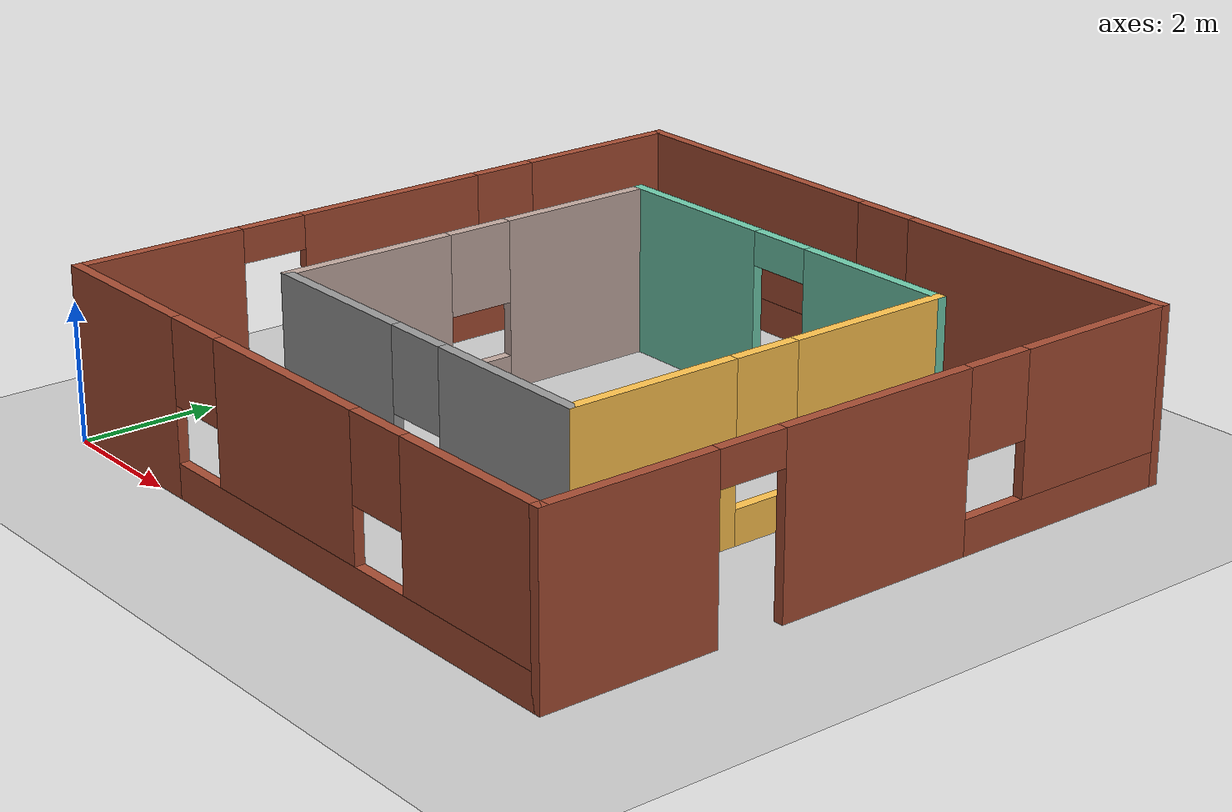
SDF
<sdf version="1.6">
 <world name="default">
  <plugin name="project_gazebo" filename="libproject_gazebo.so"/>
  <light name="sun" type="directional">
   <pose>0 0 10 0 -0 0</pose>
   <diffuse>0.8 0.8 0.8 1</diffuse>
   <specular>0.2 0.2 0.2 1</specular>
   <attenuation>
    <range>1000</range>
    <constant>0.9</constant>
    <linear>0.01</linear>
    <quadratic>0.001</quadratic>
   </attenuation>
   <direction>-0.5 0.1 -0.9</direction>
  </light>
  <model name="ground_plane">
   <static>1</static>
   <link name="link">
    <collision name="collision">
     <geometry><plane><normal>0 0 1</normal><size>100 100</size></plane></geometry>
     <surface>
      <contact><collide_bitmask>65535</collide_bitmask></contact>
      <friction><ode><mu>100</mu><mu2>50</mu2></ode></friction>
     </surface>
    </collision>
    <visual name="visual">
     <cast_shadows>0</cast_shadows>
     <geometry><plane><normal>0 0 1</normal><size>100 100</size></plane></geometry>
     <material>
      <script><uri>file://media/materials/scripts/gazebo.material</uri><name>Gazebo/Grey</name></script>
     </material>
    </visual>
   </link>
  </model>
  <gravity>0 0 -9.8</gravity>
  <magnetic_field>6e-06 2.3e-05 -4.2e-05</magnetic_field>
  <atmosphere type="adiabatic"/>
  <physics name="default_physics" default="0" type="ode">
   <max_step_size>0.001</max_step_size>
   <real_time_factor>1</real_time_factor>
   <real_time_update_rate>1000</real_time_update_rate>
  </physics>
  <scene><ambient>0.4 0.4 0.4 1</ambient><background>0.7 0.7 0.7 1</background><shadows>1</shadows></scene>
  <audio><device>default</device></audio>
  <spherical_coordinates>
   <surface_model>EARTH_WGS84</surface_model>
   <latitude_deg>0</latitude_deg>
   <longitude_deg>0</longitude_deg>
   <elevation>0</elevation>
   <heading_deg>0</heading_deg>
  </spherical_coordinates>
  <model name="project_gazebo_wall">
   <pose>4.98744 5.10563 0 0 -0 0</pose>
   <link name="Wall_1">
    <pose>5 -0 0 0 -0 1.5708</pose>
    <visual name="Wall_1_Visual_0">
     <pose>-3.7875 0 1.25 0 -0 0</pose>
     <geometry><box><size>2.575 0.15 2.5</size></box></geometry>
     <material>
      <script><uri>file://media/materials/scripts/gazebo.material</uri><name>Gazebo/Bricks</name></script>
      <ambient>1 1 1 1</ambient>
     </material>
     <meta><layer>0</layer></meta>
    </visual>
    <collision name="Wall_1_Collision_0">
     <geometry><box><size>2.575 0.15 2.5</size></box></geometry>
     <pose>-3.7875 0 1.25 0 -0 0</pose>
    </collision>
    <visual name="Wall_1_Visual_1">
     <pose>0 0 1.25 0 -0 0</pose>
     <geometry><box><size>3 0.15 2.5</size></box></geometry>
     <material>
      <script><uri>file://media/materials/scripts/gazebo.material</uri><name>Gazebo/Bricks</name></script>
      <ambient>1 1 1 1</ambient>
     </material>
     <meta><layer>0</layer></meta>
    </visual>
    <collision name="Wall_1_Collision_1">
     <geometry><box><size>3 0.15 2.5</size></box></geometry>
     <pose>0 0 1.25 0 -0 0</pose>
    </collision>
    <visual name="Wall_1_Visual_2">
     <pose>3.2875 0 0.25 0 -0 0</pose>
     <geometry><box><size>3.575 0.15 0.5</size></box></geometry>
     <material>
      <script><uri>file://media/materials/scripts/gazebo.material</uri><name>Gazebo/Bricks</name></script>
      <ambient>1 1 1 1</ambient>
     </material>
     <meta><layer>0</layer></meta>
    </visual>
    <collision name="Wall_1_Collision_2">
     <geometry><box><size>3.575 0.15 0.5</size></box></geometry>
     <pose>3.2875 0 0.25 0 -0 0</pose>
    </collision>
    <visual name="Wall_1_Visual_3">
     <pose>3.7875 0 1.5 0 -0 0</pose>
     <geometry><box><size>2.575 0.15 2</size></box></geometry>
     <material>
      <script><uri>file://media/materials/scripts/gazebo.material</uri><name>Gazebo/Bricks</name></script>
      <ambient>1 1 1 1</ambient>
     </material>
     <meta><layer>0</layer></meta>
    </visual>
    <collision name="Wall_1_Collision_3">
     <geometry><box><size>2.575 0.15 2</size></box></geometry>
     <pose>3.7875 0 1.5 0 -0 0</pose>
    </collision>
    <visual name="Wall_1_Visual_4">
     <pose>2 0 1.9 0 -0 0</pose>
     <geometry><box><size>1 0.15 1.2</size></box></geometry>
     <material>
      <script><uri>file://media/materials/scripts/gazebo.material</uri><name>Gazebo/Bricks</name></script>
      <ambient>1 1 1 1</ambient>
     </material>
     <meta><layer>0</layer></meta>
    </visual>
    <collision name="Wall_1_Collision_4">
     <geometry><box><size>1 0.15 1.2</size></box></geometry>
     <pose>2 0 1.9 0 -0 0</pose>
    </collision>
    <visual name="Wall_1_Visual_5">
     <pose>-2 0 2.25 0 -0 0</pose>
     <geometry><box><size>1 0.15 0.5</size></box></geometry>
     <material>
      <script><uri>file://media/materials/scripts/gazebo.material</uri><name>Gazebo/Bricks</name></script>
      <ambient>1 1 1 1</ambient>
     </material>
     <meta><layer>0</layer></meta>
    </visual>
    <collision name="Wall_1_Collision_5">
     <geometry><box><size>1 0.15 0.5</size></box></geometry>
     <pose>-2 0 2.25 0 -0 0</pose>
    </collision>
   </link>
   <link name="Wall_10">
    <pose>-0 -3 0 0 -0 0</pose>
    <visual name="Wall_10_Visual_0">
     <pose>-1.80742 0 1.25 0 -0 0</pose>
     <geometry><box><size>2.53517 0.15 2.5</size></box></geometry>
     <material>
      <script><uri>file://media/materials/scripts/gazebo.material</uri><name>Gazebo/Grey</name></script>
      <ambient>1 1 1 1</ambient>
     </material>
     <meta><layer>0</layer></meta>
    </visual>
    <collision name="Wall_10_Collision_0">
     <geometry><box><size>2.53517 0.15 2.5</size></box></geometry>
     <pose>-1.80742 0 1.25 0 -0 0</pose>
    </collision>
    <visual name="Wall_10_Visual_1">
     <pose>1.26758 0 0.25 0 -0 0</pose>
     <geometry><box><size>3.61483 0.15 0.5</size></box></geometry>
     <material>
      <script><uri>file://media/materials/scripts/gazebo.material</uri><name>Gazebo/Grey</name></script>
      <ambient>1 1 1 1</ambient>
     </material>
     <meta><layer>0</layer></meta>
    </visual>
    <collision name="Wall_10_Collision_1">
     <geometry><box><size>3.61483 0.15 0.5</size></box></geometry>
     <pose>1.26758 0 0.25 0 -0 0</pose>
    </collision>
    <visual name="Wall_10_Visual_2">
     <pose>1.76758 0 1.5 0 -0 0</pose>
     <geometry><box><size>2.61483 0.15 2</size></box></geometry>
     <material>
      <script><uri>file://media/materials/scripts/gazebo.material</uri><name>Gazebo/Grey</name></script>
      <ambient>1 1 1 1</ambient>
     </material>
     <meta><layer>0</layer></meta>
    </visual>
    <collision name="Wall_10_Collision_2">
     <geometry><box><size>2.61483 0.15 2</size></box></geometry>
     <pose>1.76758 0 1.5 0 -0 0</pose>
    </collision>
    <visual name="Wall_10_Visual_3">
     <pose>-0.039832 0 1.9 0 -0 0</pose>
     <geometry><box><size>1 0.15 1.2</size></box></geometry>
     <material>
      <script><uri>file://media/materials/scripts/gazebo.material</uri><name>Gazebo/Grey</name></script>
      <ambient>1 1 1 1</ambient>
     </material>
     <meta><layer>0</layer></meta>
    </visual>
    <collision name="Wall_10_Collision_3">
     <geometry><box><size>1 0.15 1.2</size></box></geometry>
     <pose>-0.039832 0 1.9 0 -0 0</pose>
    </collision>
   </link>
   <link name="Wall_11">
    <pose>3 -0 0 0 -0 1.5708</pose>
    <visual name="Wall_11_Visual_0">
     <pose>-1.78192 0 1.25 0 -0 0</pose>
     <geometry><box><size>2.58615 0.15 2.5</size></box></geometry>
     <material>
      <script><uri>file://media/materials/scripts/gazebo.material</uri><name>Gazebo/Grey</name></script>
      <ambient>1 0.764706 0.305882 1</ambient>
     </material>
     <meta><layer>0</layer></meta>
    </visual>
    <collision name="Wall_11_Collision_0">
     <geometry><box><size>2.58615 0.15 2.5</size></box></geometry>
     <pose>-1.78192 0 1.25 0 -0 0</pose>
    </collision>
    <visual name="Wall_11_Visual_1">
     <pose>1.29308 0 0.25 0 -0 0</pose>
     <geometry><box><size>3.56385 0.15 0.5</size></box></geometry>
     <material>
      <script><uri>file://media/materials/scripts/gazebo.material</uri><name>Gazebo/Grey</name></script>
      <ambient>1 0.764706 0.305882 1</ambient>
     </material>
     <meta><layer>0</layer></meta>
    </visual>
    <collision name="Wall_11_Collision_1">
     <geometry><box><size>3.56385 0.15 0.5</size></box></geometry>
     <pose>1.29308 0 0.25 0 -0 0</pose>
    </collision>
    <visual name="Wall_11_Visual_2">
     <pose>1.79308 0 1.5 0 -0 0</pose>
     <geometry><box><size>2.56385 0.15 2</size></box></geometry>
     <material>
      <script><uri>file://media/materials/scripts/gazebo.material</uri><name>Gazebo/Grey</name></script>
      <ambient>1 0.764706 0.305882 1</ambient>
     </material>
     <meta><layer>0</layer></meta>
    </visual>
    <collision name="Wall_11_Collision_2">
     <geometry><box><size>2.56385 0.15 2</size></box></geometry>
     <pose>1.79308 0 1.5 0 -0 0</pose>
    </collision>
    <visual name="Wall_11_Visual_3">
     <pose>0.011152 0 1.9 0 -0 0</pose>
     <geometry><box><size>1 0.15 1.2</size></box></geometry>
     <material>
      <script><uri>file://media/materials/scripts/gazebo.material</uri><name>Gazebo/Grey</name></script>
      <ambient>1 0.764706 0.305882 1</ambient>
     </material>
     <meta><layer>0</layer></meta>
    </visual>
    <collision name="Wall_11_Collision_3">
     <geometry><box><size>1 0.15 1.2</size></box></geometry>
     <pose>0.011152 0 1.9 0 -0 0</pose>
    </collision>
   </link>
   <link name="Wall_12">
    <pose>-0 3 0 0 -0 3.14159</pose>
    <visual name="Wall_12_Visual_0">
     <pose>-1.80804 0 1.25 0 -0 0</pose>
     <geometry><box><size>2.53392 0.15 2.5</size></box></geometry>
     <material>
      <script><uri>file://media/materials/scripts/gazebo.material</uri><name>Gazebo/Grey</name></script>
      <ambient>0.435294 0.796078 0.67451 1</ambient>
     </material>
     <meta><layer>0</layer></meta>
    </visual>
    <collision name="Wall_12_Collision_0">
     <geometry><box><size>2.53392 0.15 2.5</size></box></geometry>
     <pose>-1.80804 0 1.25 0 -0 0</pose>
    </collision>
    <visual name="Wall_12_Visual_1">
     <pose>1.76696 0 1.25 0 -0 0</pose>
     <geometry><box><size>2.61608 0.15 2.5</size></box></geometry>
     <material>
      <script><uri>file://media/materials/scripts/gazebo.material</uri><name>Gazebo/Grey</name></script>
      <ambient>0.435294 0.796078 0.67451 1</ambient>
     </material>
     <meta><layer>0</layer></meta>
    </visual>
    <collision name="Wall_12_Collision_1">
     <geometry><box><size>2.61608 0.15 2.5</size></box></geometry>
     <pose>1.76696 0 1.25 0 -0 0</pose>
    </collision>
    <visual name="Wall_12_Visual_2">
     <pose>-0.041079 0 2.25 0 -0 0</pose>
     <geometry><box><size>1 0.15 0.5</size></box></geometry>
     <material>
      <script><uri>file://media/materials/scripts/gazebo.material</uri><name>Gazebo/Grey</name></script>
      <ambient>0.435294 0.796078 0.67451 1</ambient>
     </material>
     <meta><layer>0</layer></meta>
    </visual>
    <collision name="Wall_12_Collision_2">
     <geometry><box><size>1 0.15 0.5</size></box></geometry>
     <pose>-0.041079 0 2.25 0 -0 0</pose>
    </collision>
   </link>
   <link name="Wall_2">
    <pose>-0 5 0 0 -0 3.14159</pose>
    <visual name="Wall_2_Visual_0">
     <pose>-2.7875 0 1.25 0 -0 0</pose>
     <geometry><box><size>4.575 0.15 2.5</size></box></geometry>
     <material>
      <script><uri>file://media/materials/scripts/gazebo.material</uri><name>Gazebo/Bricks</name></script>
      <ambient>1 1 1 1</ambient>
     </material>
     <meta><layer>0</layer></meta>
    </visual>
    <collision name="Wall_2_Collision_0">
     <geometry><box><size>4.575 0.15 2.5</size></box></geometry>
     <pose>-2.7875 0 1.25 0 -0 0</pose>
    </collision>
    <visual name="Wall_2_Visual_1">
     <pose>2.2875 0 0.25 0 -0 0</pose>
     <geometry><box><size>5.575 0.15 0.5</size></box></geometry>
     <material>
      <script><uri>file://media/materials/scripts/gazebo.material</uri><name>Gazebo/Bricks</name></script>
      <ambient>1 1 1 1</ambient>
     </material>
     <meta><layer>0</layer></meta>
    </visual>
    <collision name="Wall_2_Collision_1">
     <geometry><box><size>5.575 0.15 0.5</size></box></geometry>
     <pose>2.2875 0 0.25 0 -0 0</pose>
    </collision>
    <visual name="Wall_2_Visual_2">
     <pose>2.7875 0 1.5 0 -0 0</pose>
     <geometry><box><size>4.575 0.15 2</size></box></geometry>
     <material>
      <script><uri>file://media/materials/scripts/gazebo.material</uri><name>Gazebo/Bricks</name></script>
      <ambient>1 1 1 1</ambient>
     </material>
     <meta><layer>0</layer></meta>
    </visual>
    <collision name="Wall_2_Collision_2">
     <geometry><box><size>4.575 0.15 2</size></box></geometry>
     <pose>2.7875 0 1.5 0 -0 0</pose>
    </collision>
    <visual name="Wall_2_Visual_3">
     <pose>0 0 1.9 0 -0 0</pose>
     <geometry><box><size>1 0.15 1.2</size></box></geometry>
     <material>
      <script><uri>file://media/materials/scripts/gazebo.material</uri><name>Gazebo/Bricks</name></script>
      <ambient>1 1 1 1</ambient>
     </material>
     <meta><layer>0</layer></meta>
    </visual>
    <collision name="Wall_2_Collision_3">
     <geometry><box><size>1 0.15 1.2</size></box></geometry>
     <pose>0 0 1.9 0 -0 0</pose>
    </collision>
   </link>
   <link name="Wall_6">
    <pose>-5 -0 0 0 -0 -1.5708</pose>
    <visual name="Wall_6_Visual_0">
     <pose>-3.7875 0 1.25 0 -0 0</pose>
     <geometry><box><size>2.575 0.15 2.5</size></box></geometry>
     <material>
      <script><uri>file://media/materials/scripts/gazebo.material</uri><name>Gazebo/Bricks</name></script>
      <ambient>1 1 1 1</ambient>
     </material>
     <meta><layer>0</layer></meta>
    </visual>
    <collision name="Wall_6_Collision_0">
     <geometry><box><size>2.575 0.15 2.5</size></box></geometry>
     <pose>-3.7875 0 1.25 0 -0 0</pose>
    </collision>
    <visual name="Wall_6_Visual_1">
     <pose>3.7875 0 1.25 0 -0 0</pose>
     <geometry><box><size>2.575 0.15 2.5</size></box></geometry>
     <material>
      <script><uri>file://media/materials/scripts/gazebo.material</uri><name>Gazebo/Bricks</name></script>
      <ambient>1 1 1 1</ambient>
     </material>
     <meta><layer>0</layer></meta>
    </visual>
    <collision name="Wall_6_Collision_1">
     <geometry><box><size>2.575 0.15 2.5</size></box></geometry>
     <pose>3.7875 0 1.25 0 -0 0</pose>
    </collision>
    <visual name="Wall_6_Visual_2">
     <pose>-0.5 0 0.25 0 -0 0</pose>
     <geometry><box><size>4 0.15 0.5</size></box></geometry>
     <material>
      <script><uri>file://media/materials/scripts/gazebo.material</uri><name>Gazebo/Bricks</name></script>
      <ambient>1 1 1 1</ambient>
     </material>
     <meta><layer>0</layer></meta>
    </visual>
    <collision name="Wall_6_Collision_2">
     <geometry><box><size>4 0.15 0.5</size></box></geometry>
     <pose>-0.5 0 0.25 0 -0 0</pose>
    </collision>
    <visual name="Wall_6_Visual_3">
     <pose>0 0 1.5 0 -0 0</pose>
     <geometry><box><size>3 0.15 2</size></box></geometry>
     <material>
      <script><uri>file://media/materials/scripts/gazebo.material</uri><name>Gazebo/Bricks</name></script>
      <ambient>1 1 1 1</ambient>
     </material>
     <meta><layer>0</layer></meta>
    </visual>
    <collision name="Wall_6_Collision_3">
     <geometry><box><size>3 0.15 2</size></box></geometry>
     <pose>0 0 1.5 0 -0 0</pose>
    </collision>
    <visual name="Wall_6_Visual_4">
     <pose>-2 0 1.9 0 -0 0</pose>
     <geometry><box><size>1 0.15 1.2</size></box></geometry>
     <material>
      <script><uri>file://media/materials/scripts/gazebo.material</uri><name>Gazebo/Bricks</name></script>
      <ambient>1 1 1 1</ambient>
     </material>
     <meta><layer>0</layer></meta>
    </visual>
    <collision name="Wall_6_Collision_4">
     <geometry><box><size>1 0.15 1.2</size></box></geometry>
     <pose>-2 0 1.9 0 -0 0</pose>
    </collision>
    <visual name="Wall_6_Visual_5">
     <pose>2 0 2.25 0 -0 0</pose>
     <geometry><box><size>1 0.15 0.5</size></box></geometry>
     <material>
      <script><uri>file://media/materials/scripts/gazebo.material</uri><name>Gazebo/Bricks</name></script>
      <ambient>1 1 1 1</ambient>
     </material>
     <meta><layer>0</layer></meta>
    </visual>
    <collision name="Wall_6_Collision_5">
     <geometry><box><size>1 0.15 0.5</size></box></geometry>
     <pose>2 0 2.25 0 -0 0</pose>
    </collision>
   </link>
   <link name="Wall_7">
    <pose>-0 -5 0 0 -0 0</pose>
    <visual name="Wall_7_Visual_0">
     <pose>-3.7875 0 1.25 0 -0 0</pose>
     <geometry><box><size>2.575 0.15 2.5</size></box></geometry>
     <material>
      <script><uri>file://media/materials/scripts/gazebo.material</uri><name>Gazebo/Bricks</name></script>
      <ambient>1 1 1 1</ambient>
     </material>
     <meta><layer>0</layer></meta>
    </visual>
    <collision name="Wall_7_Collision_0">
     <geometry><box><size>2.575 0.15 2.5</size></box></geometry>
     <pose>-3.7875 0 1.25 0 -0 0</pose>
    </collision>
    <visual name="Wall_7_Visual_1">
     <pose>1.2875 0 0.25 0 -0 0</pose>
     <geometry><box><size>7.575 0.15 0.5</size></box></geometry>
     <material>
      <script><uri>file://media/materials/scripts/gazebo.material</uri><name>Gazebo/Bricks</name></script>
      <ambient>1 1 1 1</ambient>
     </material>
     <meta><layer>0</layer></meta>
    </visual>
    <collision name="Wall_7_Collision_1">
     <geometry><box><size>7.575 0.15 0.5</size></box></geometry>
     <pose>1.2875 0 0.25 0 -0 0</pose>
    </collision>
    <visual name="Wall_7_Visual_2">
     <pose>0 0 1.5 0 -0 0</pose>
     <geometry><box><size>3 0.15 2</size></box></geometry>
     <material>
      <script><uri>file://media/materials/scripts/gazebo.material</uri><name>Gazebo/Bricks</name></script>
      <ambient>1 1 1 1</ambient>
     </material>
     <meta><layer>0</layer></meta>
    </visual>
    <collision name="Wall_7_Collision_2">
     <geometry><box><size>3 0.15 2</size></box></geometry>
     <pose>0 0 1.5 0 -0 0</pose>
    </collision>
    <visual name="Wall_7_Visual_3">
     <pose>3.7875 0 1.5 0 -0 0</pose>
     <geometry><box><size>2.575 0.15 2</size></box></geometry>
     <material>
      <script><uri>file://media/materials/scripts/gazebo.material</uri><name>Gazebo/Bricks</name></script>
      <ambient>1 1 1 1</ambient>
     </material>
     <meta><layer>0</layer></meta>
    </visual>
    <collision name="Wall_7_Collision_3">
     <geometry><box><size>2.575 0.15 2</size></box></geometry>
     <pose>3.7875 0 1.5 0 -0 0</pose>
    </collision>
    <visual name="Wall_7_Visual_4">
     <pose>-2 0 1.9 0 -0 0</pose>
     <geometry><box><size>1 0.15 1.2</size></box></geometry>
     <material>
      <script><uri>file://media/materials/scripts/gazebo.material</uri><name>Gazebo/Bricks</name></script>
      <ambient>1 1 1 1</ambient>
     </material>
     <meta><layer>0</layer></meta>
    </visual>
    <collision name="Wall_7_Collision_4">
     <geometry><box><size>1 0.15 1.2</size></box></geometry>
     <pose>-2 0 1.9 0 -0 0</pose>
    </collision>
    <visual name="Wall_7_Visual_5">
     <pose>2 0 1.9 0 -0 0</pose>
     <geometry><box><size>1 0.15 1.2</size></box></geometry>
     <material>
      <script><uri>file://media/materials/scripts/gazebo.material</uri><name>Gazebo/Bricks</name></script>
      <ambient>1 1 1 1</ambient>
     </material>
     <meta><layer>0</layer></meta>
    </visual>
    <collision name="Wall_7_Collision_5">
     <geometry><box><size>1 0.15 1.2</size></box></geometry>
     <pose>2 0 1.9 0 -0 0</pose>
    </collision>
   </link>
   <link name="Wall_9">
    <pose>-3 -0 0 0 -0 -1.5708</pose>
    <visual name="Wall_9_Visual_0">
     <pose>-1.82342 0 1.25 0 -0 0</pose>
     <geometry><box><size>2.50316 0.15 2.5</size></box></geometry>
     <material>
      <script><uri>file://media/materials/scripts/gazebo.material</uri><name>Gazebo/Grey</name></script>
      <ambient>0.760784 0.662745 0.627451 1</ambient>
     </material>
     <meta><layer>0</layer></meta>
    </visual>
    <collision name="Wall_9_Collision_0">
     <geometry><box><size>2.50316 0.15 2.5</size></box></geometry>
     <pose>-1.82342 0 1.25 0 -0 0</pose>
    </collision>
    <visual name="Wall_9_Visual_1">
     <pose>1.25158 0 0.25 0 -0 0</pose>
     <geometry><box><size>3.64684 0.15 0.5</size></box></geometry>
     <material>
      <script><uri>file://media/materials/scripts/gazebo.material</uri><name>Gazebo/Grey</name></script>
      <ambient>0.760784 0.662745 0.627451 1</ambient>
     </material>
     <meta><layer>0</layer></meta>
    </visual>
    <collision name="Wall_9_Collision_1">
     <geometry><box><size>3.64684 0.15 0.5</size></box></geometry>
     <pose>1.25158 0 0.25 0 -0 0</pose>
    </collision>
    <visual name="Wall_9_Visual_2">
     <pose>1.75158 0 1.5 0 -0 0</pose>
     <geometry><box><size>2.64684 0.15 2</size></box></geometry>
     <material>
      <script><uri>file://media/materials/scripts/gazebo.material</uri><name>Gazebo/Grey</name></script>
      <ambient>0.760784 0.662745 0.627451 1</ambient>
     </material>
     <meta><layer>0</layer></meta>
    </visual>
    <collision name="Wall_9_Collision_2">
     <geometry><box><size>2.64684 0.15 2</size></box></geometry>
     <pose>1.75158 0 1.5 0 -0 0</pose>
    </collision>
    <visual name="Wall_9_Visual_3">
     <pose>-0.071836 0 1.9 0 -0 0</pose>
     <geometry><box><size>1 0.15 1.2</size></box></geometry>
     <material>
      <script><uri>file://media/materials/scripts/gazebo.material</uri><name>Gazebo/Grey</name></script>
      <ambient>0.760784 0.662745 0.627451 1</ambient>
     </material>
     <meta><layer>0</layer></meta>
    </visual>
    <collision name="Wall_9_Collision_3">
     <geometry><box><size>1 0.15 1.2</size></box></geometry>
     <pose>-0.071836 0 1.9 0 -0 0</pose>
    </collision>
   </link>
   <static>1</static>
  </model>
 </world>
</sdf>
